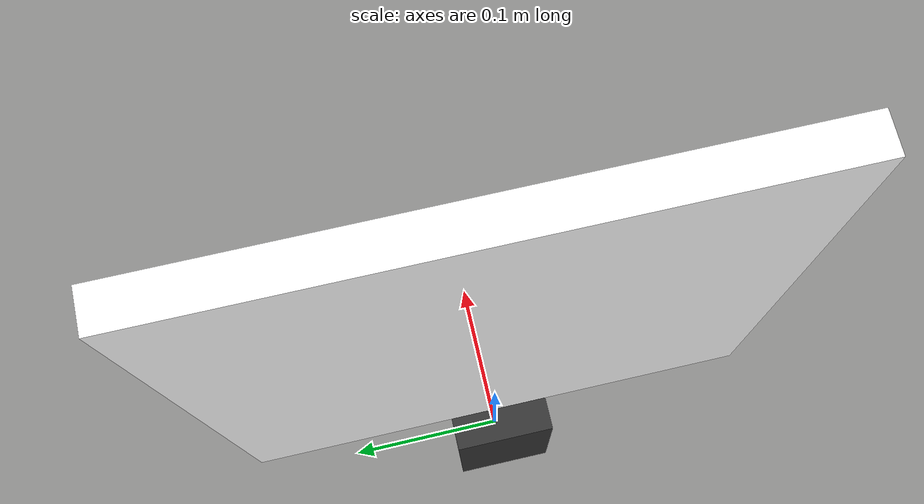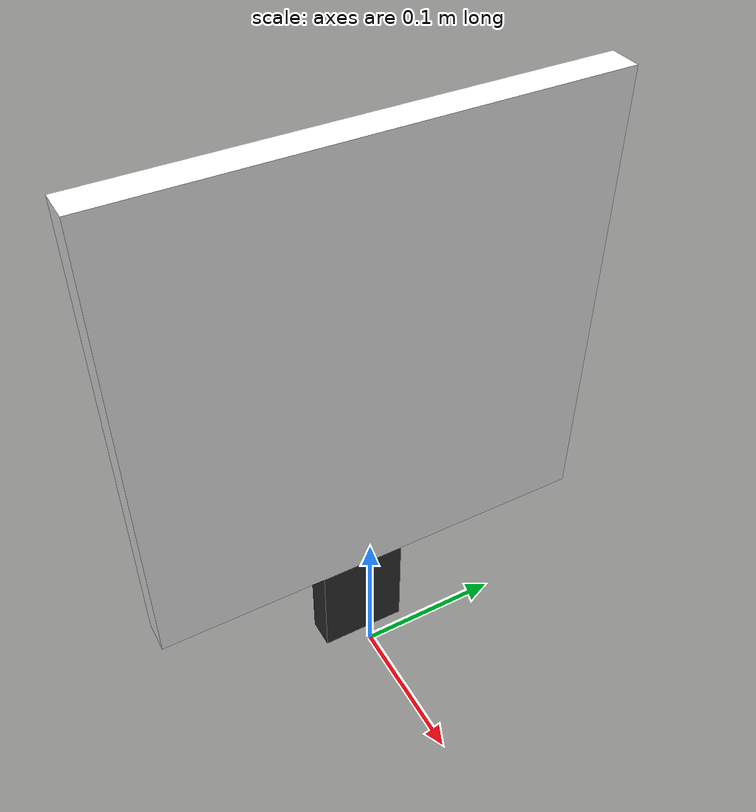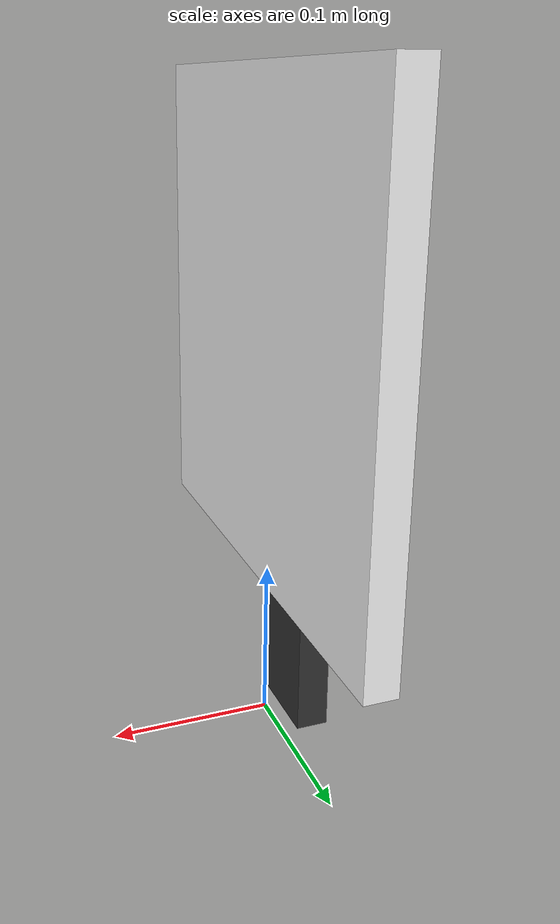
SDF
<?xml version="1.0" ?>
<sdf version="1.8">
  <model name="dock_marker">
    <static>true</static>
    <link name="link">
      <collision name="plate_collision">
        <pose>0 0 0.25 0 0 0</pose>
        <geometry><box><size>0.02 0.30 0.30</size></box></geometry>
      </collision>
      <visual name="plate">
        <pose>0 0 0.25 0 0 0</pose>
        <geometry><box><size>0.02 0.30 0.30</size></box></geometry>
        <material>
          <ambient>1 1 1 1</ambient>
          <diffuse>1 1 1 1</diffuse>
          <specular>0.05 0.05 0.05 1</specular>
          <pbr>
            <metal>
              <albedo_map>model://dock_marker/materials/textures/aruco_4x4_100_0.png</albedo_map>
              <metalness>0.0</metalness>
              <roughness>0.9</roughness>
            </metal>
          </pbr>
        </material>
      </visual>
      <!-- 벽/스테이션 부착용 받침 기둥 (바닥 ~ 판 아래 0.10 m) -->
      <visual name="post">
        <pose>-0.02 0 0.05 0 0 0</pose>
        <geometry><box><size>0.02 0.06 0.10</size></box></geometry>
        <material><ambient>0.2 0.2 0.2 1</ambient><diffuse>0.2 0.2 0.2 1</diffuse></material>
      </visual>
    </link>
  </model>
</sdf>
